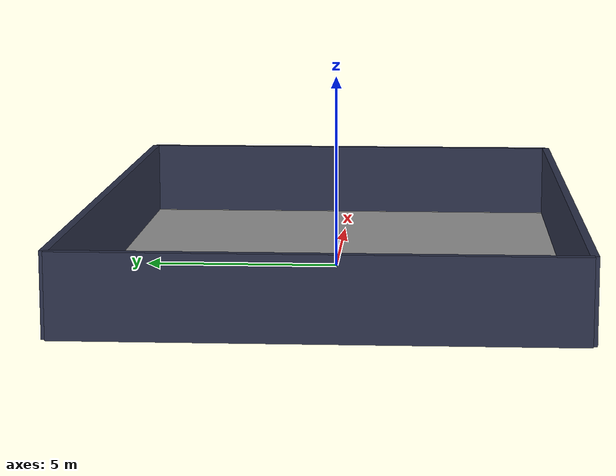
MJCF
<mujoco model="factory">
    <option timestep="0.001" gravity="0 0 -9.81"
            integrator="RK4" solver="PGS" />

    <visual>
        <headlight diffuse="0.6 0.6 0.6" ambient="0.3 0.3 0.3" />

        <rgba fog="0.10 0.12 0.14 1" />

        <global azimuth="120" elevation="-20" />
    </visual>

    <asset>
        <texture type="skybox" builtin="gradient"
                 rgb1="0.05 0.08 0.12" rgb2="0.25 0.27 0.30"
                 width="512" height="3072" />

        <material name="floor_mat" rgba="0.6 0.6 0.6 1" reflectance="0.3" />

        <texture name="kmu_logo_tex" type="2d" file="Signature_KMU.png" />

        <material name="logo_mat" texture="kmu_logo_tex" texuniform="true" />

        <material name="box_mat" rgba="0.8 0.2 0.2 1" reflectance="0.5" />
    </asset>

    <worldbody>
        <light pos="0 0 8" dir="0 0 -1" directional="true" />

        <!-- 바닥을 z = 0 에 둔다 -->
        <geom name="floor_base" type="plane" size="8 6 0.05" pos="0 0 0" material="floor_mat" />

        <!-- 로고: 바닥 위에 아주 얇게 깔기 (살짝만 위로) -->
        <geom name="floor_logo"
              type="box"
              pos="0 0 0.001"
              size="1.5 1.5 0.0005"
              material="logo_mat" />

        <!-- 벽: 바닥(z=0)에서 위로 2m 정도 올라가도록 (center z=1, half-height=1) -->
        <geom name="wall_front"
              type="box"
              pos="0 6 1"
              size="8 0.1 1"
              rgba="0.18 0.20 0.3 1" />

        <geom name="wall_back"
              type="box"
              pos="0 -6 1"
              size="8 0.1 1"
              rgba="0.18 0.20 0.3 1" />

        <geom name="wall_left"
              type="box"
              pos="-8 0 1"
              size="0.1 6 1"
              rgba="0.18 0.20 0.3 1" />

        <geom name="wall_right"
              type="box"
              pos="8 0 1"
              size="0.1 6 1"
              rgba="0.18 0.20 0.3 1" />

    </worldbody>
</mujoco>
